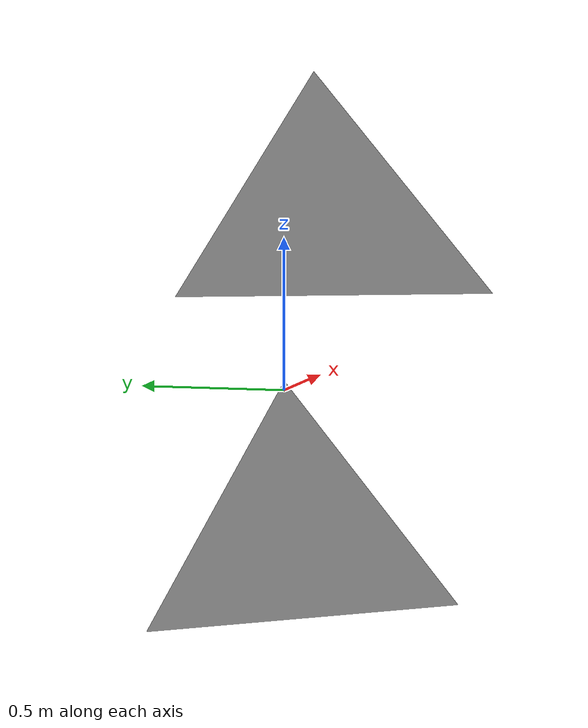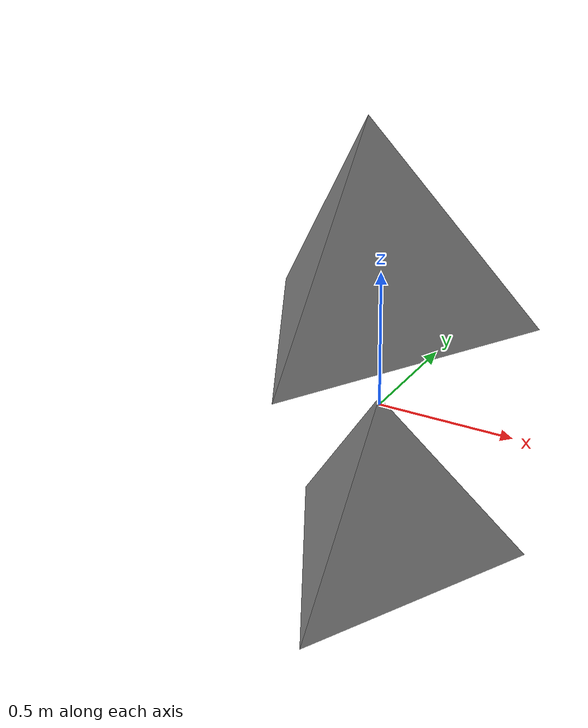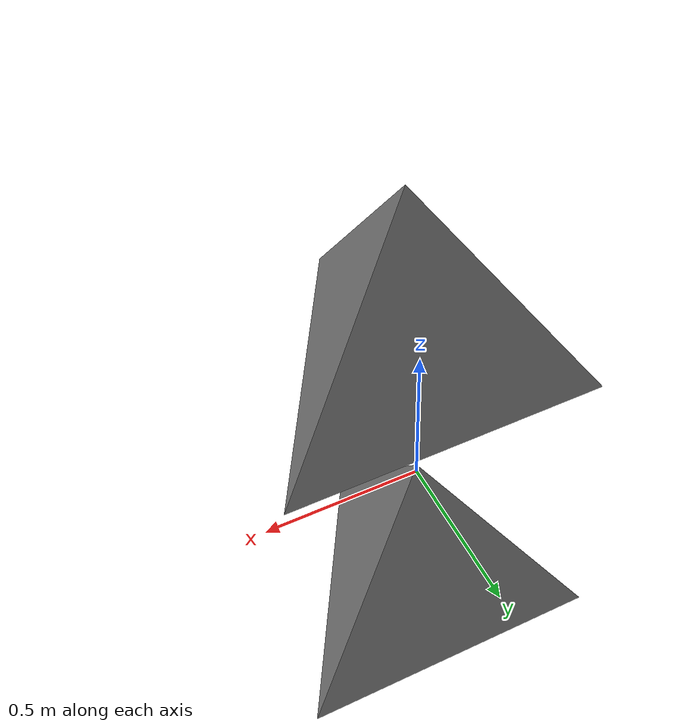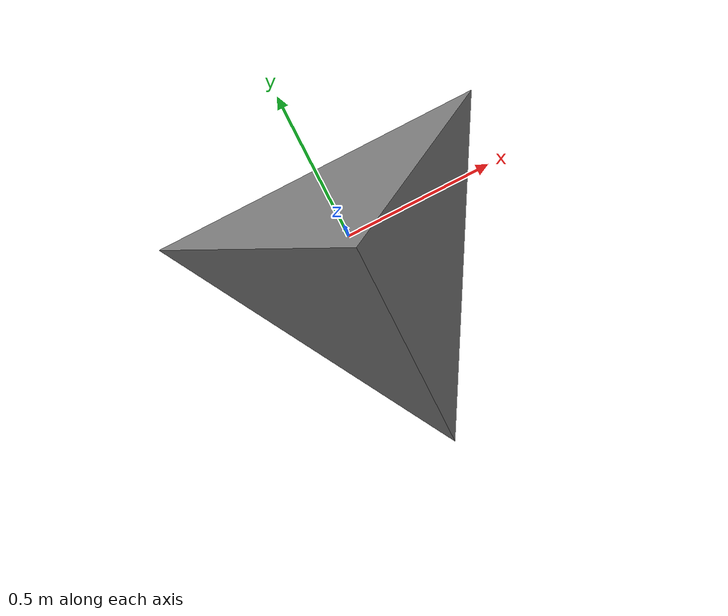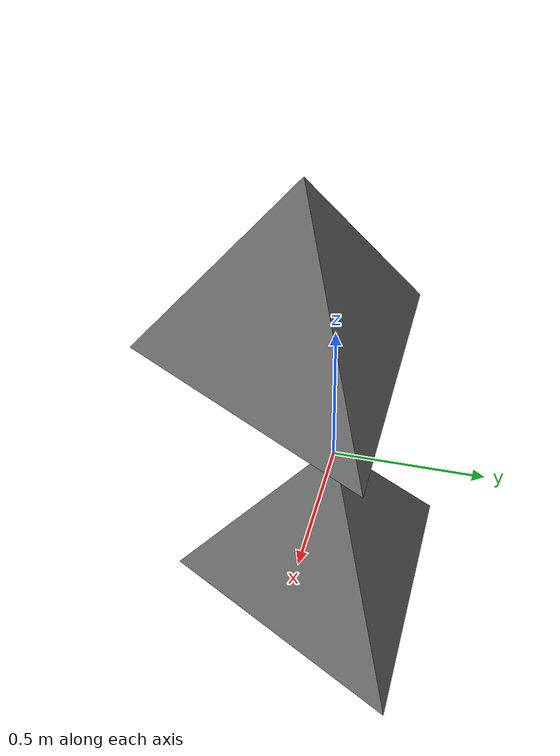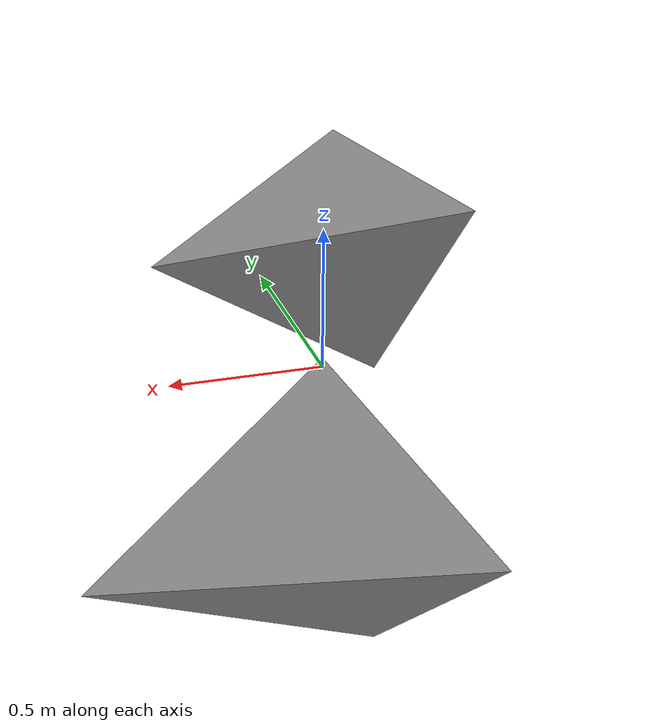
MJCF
<mujoco>
    <asset>
        <mesh file="tet-pyramid.stl" name="tet-pyramid"/>
    </asset>
    <worldbody>
        <body pos="-0 -0.1 0.5" quat="0 0 0.707107 0.707107">
            <geom mesh="tet-pyramid" type="mesh" friction="0.000000"/>
            <freejoint/>
        </body>
        <body pos="-0 0 -0.5" quat="0 0 0.707107 0.707107">
            <geom mesh="tet-pyramid" type="mesh" friction="0.000000"/>
        </body>
    </worldbody>
</mujoco>
